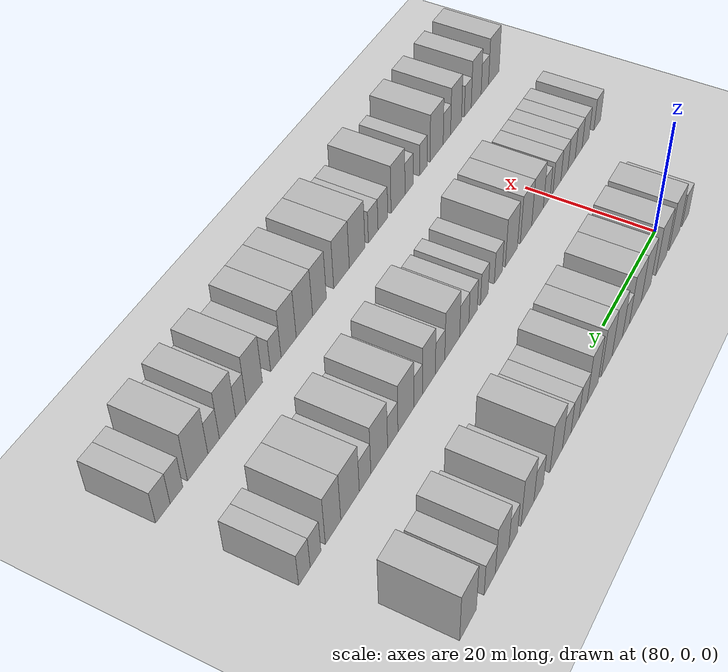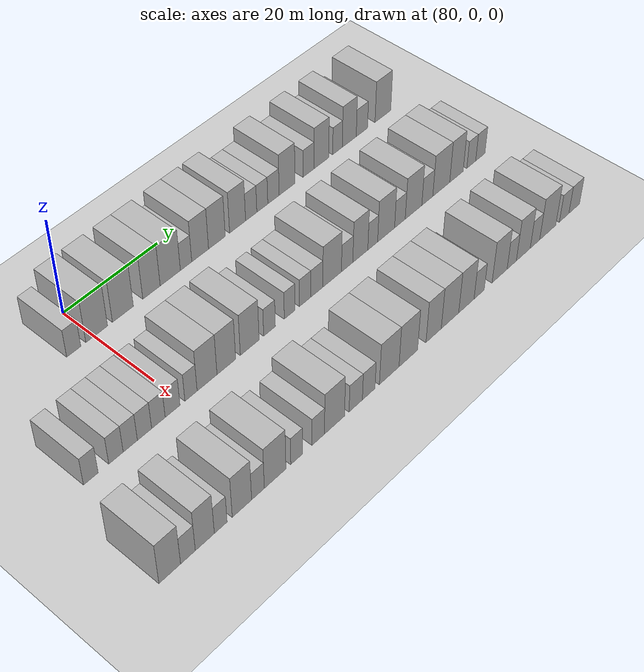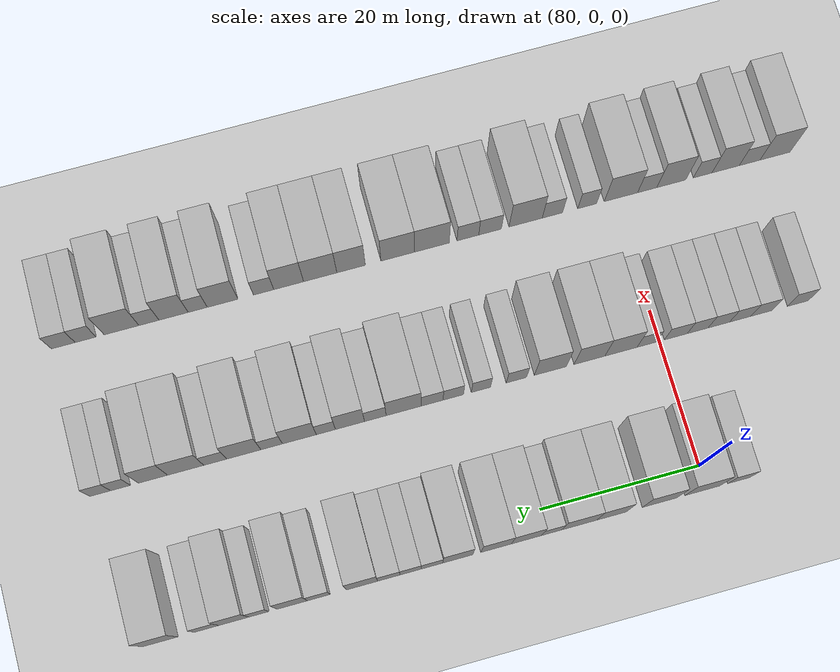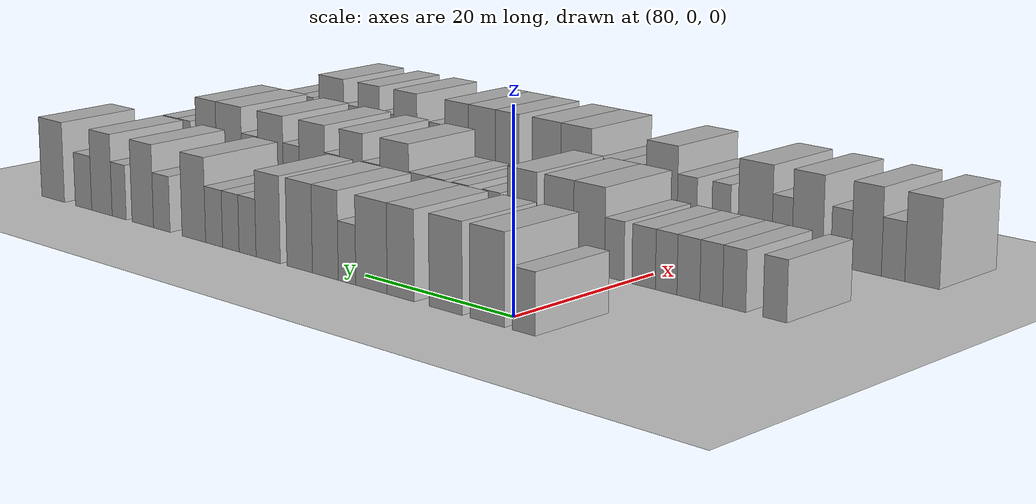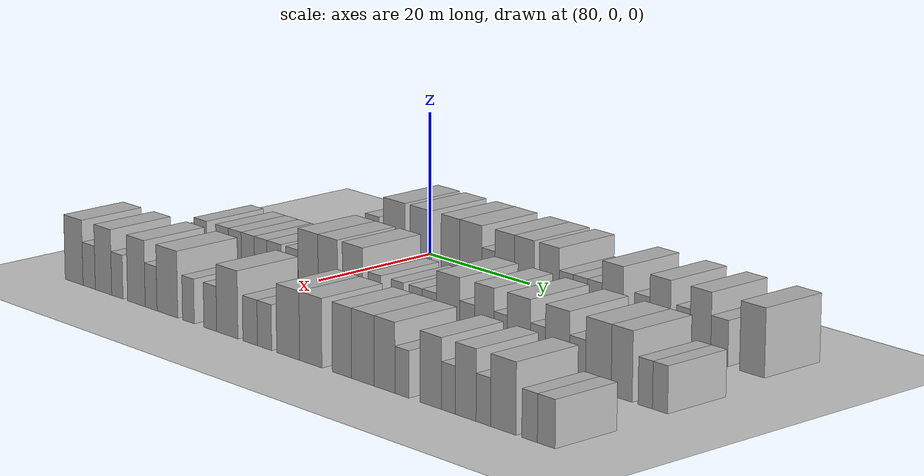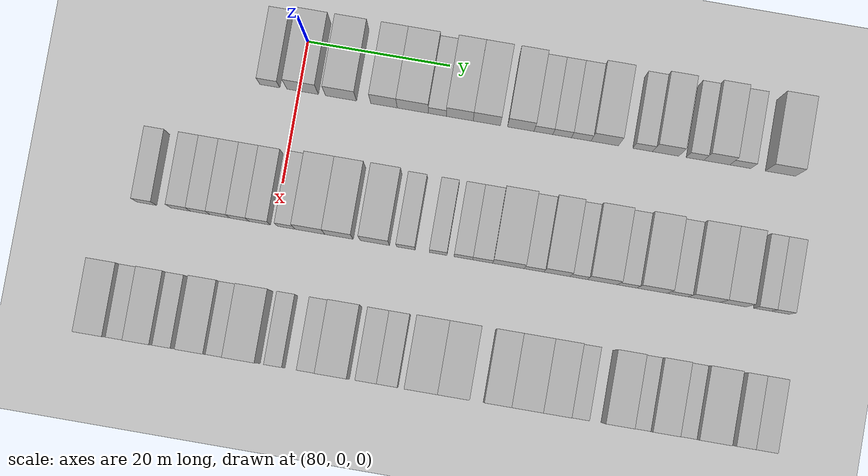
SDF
<sdf version="1.6">
 <world name="default">
  <include>
   <name>ground_plane_2</name>
   <uri>model://HANNAS_ground_plane</uri>
   <pose>100 0 0  0 0 0</pose>
  </include>
  <model name="building_600">
   <static>1</static>
   <pose>82.0000 -4.1194 0 0.000000 0.000000 0.000000</pose>
   <link name="link">
    <pose>0 0 3.00 0 0 0</pose>
    <collision name="collision"><geometry><box><size>10.0000 2.8161 6.0000</size></box></geometry></collision>
    <visual name="visual">
     <cast_shadows>0</cast_shadows>
     <geometry><box><size>10.0000 2.8161 6.0000</size></box></geometry>
     <material>
      <script>
       <uri>model://HANNAS_wall/materials/scripts</uri>
       <uri>model://HANNAS_wall/materials/textures</uri>
       <name>vrc/HANNAS_wall</name>
      </script>
     </material>
    </visual>
   </link>
  </model>
  <model name="building_601">
   <static>1</static>
   <pose>82.0000 0.5053 0 0.000000 0.000000 0.000000</pose>
   <link name="link">
    <pose>0 0 4.50 0 0 0</pose>
    <collision name="collision"><geometry><box><size>10.0000 4.4334 9.0000</size></box></geometry></collision>
    <visual name="visual">
     <cast_shadows>0</cast_shadows>
     <geometry><box><size>10.0000 4.4334 9.0000</size></box></geometry>
     <material>
      <script>
       <uri>model://HANNAS_wall/materials/scripts</uri>
       <uri>model://HANNAS_wall/materials/textures</uri>
       <name>vrc/HANNAS_wall</name>
      </script>
     </material>
    </visual>
   </link>
  </model>
  <model name="building_602">
   <static>1</static>
   <pose>82.0000 5.9042 0 0.000000 0.000000 0.000000</pose>
   <link name="link">
    <pose>0 0 4.50 0 0 0</pose>
    <collision name="collision"><geometry><box><size>10.0000 4.3644 9.0000</size></box></geometry></collision>
    <visual name="visual">
     <cast_shadows>0</cast_shadows>
     <geometry><box><size>10.0000 4.3644 9.0000</size></box></geometry>
     <material>
      <script>
       <uri>model://HANNAS_wall/materials/scripts</uri>
       <uri>model://HANNAS_wall/materials/textures</uri>
       <name>vrc/HANNAS_wall</name>
      </script>
     </material>
    </visual>
   </link>
  </model>
  <model name="building_603">
   <static>1</static>
   <pose>82.0000 11.9452 0 0.000000 0.000000 0.000000</pose>
   <link name="link">
    <pose>0 0 4.50 0 0 0</pose>
    <collision name="collision"><geometry><box><size>10.0000 3.7176 9.0000</size></box></geometry></collision>
    <visual name="visual">
     <cast_shadows>0</cast_shadows>
     <geometry><box><size>10.0000 3.7176 9.0000</size></box></geometry>
     <material>
      <script>
       <uri>model://HANNAS_wall/materials/scripts</uri>
       <uri>model://HANNAS_wall/materials/textures</uri>
       <name>vrc/HANNAS_wall</name>
      </script>
     </material>
    </visual>
   </link>
  </model>
  <model name="building_604">
   <static>1</static>
   <pose>82.0000 16.0056 0 0.000000 0.000000 0.000000</pose>
   <link name="link">
    <pose>0 0 4.50 0 0 0</pose>
    <collision name="collision"><geometry><box><size>10.0000 4.4032 9.0000</size></box></geometry></collision>
    <visual name="visual">
     <cast_shadows>0</cast_shadows>
     <geometry><box><size>10.0000 4.4032 9.0000</size></box></geometry>
     <material>
      <script>
       <uri>model://HANNAS_wall/materials/scripts</uri>
       <uri>model://HANNAS_wall/materials/textures</uri>
       <name>vrc/HANNAS_wall</name>
      </script>
     </material>
    </visual>
   </link>
  </model>
  <model name="building_605">
   <static>1</static>
   <pose>82.0000 19.4629 0 0.000000 0.000000 0.000000</pose>
   <link name="link">
    <pose>0 0 3.00 0 0 0</pose>
    <collision name="collision"><geometry><box><size>10.0000 2.5113 6.0000</size></box></geometry></collision>
    <visual name="visual">
     <cast_shadows>0</cast_shadows>
     <geometry><box><size>10.0000 2.5113 6.0000</size></box></geometry>
     <material>
      <script>
       <uri>model://HANNAS_wall/materials/scripts</uri>
       <uri>model://HANNAS_wall/materials/textures</uri>
       <name>vrc/HANNAS_wall</name>
      </script>
     </material>
    </visual>
   </link>
  </model>
  <model name="building_606">
   <static>1</static>
   <pose>82.0000 22.6037 0 0.000000 0.000000 0.000000</pose>
   <link name="link">
    <pose>0 0 4.50 0 0 0</pose>
    <collision name="collision"><geometry><box><size>10.0000 3.7704 9.0000</size></box></geometry></collision>
    <visual name="visual">
     <cast_shadows>0</cast_shadows>
     <geometry><box><size>10.0000 3.7704 9.0000</size></box></geometry>
     <material>
      <script>
       <uri>model://HANNAS_wall/materials/scripts</uri>
       <uri>model://HANNAS_wall/materials/textures</uri>
       <name>vrc/HANNAS_wall</name>
      </script>
     </material>
    </visual>
   </link>
  </model>
  <model name="building_607">
   <static>1</static>
   <pose>82.0000 26.3941 0 0.000000 0.000000 0.000000</pose>
   <link name="link">
    <pose>0 0 4.50 0 0 0</pose>
    <collision name="collision"><geometry><box><size>10.0000 3.8102 9.0000</size></box></geometry></collision>
    <visual name="visual">
     <cast_shadows>0</cast_shadows>
     <geometry><box><size>10.0000 3.8102 9.0000</size></box></geometry>
     <material>
      <script>
       <uri>model://HANNAS_wall/materials/scripts</uri>
       <uri>model://HANNAS_wall/materials/textures</uri>
       <name>vrc/HANNAS_wall</name>
      </script>
     </material>
    </visual>
   </link>
  </model>
  <model name="building_608">
   <static>1</static>
   <pose>82.0000 31.1596 0 0.000000 0.000000 0.000000</pose>
   <link name="link">
    <pose>0 0 4.50 0 0 0</pose>
    <collision name="collision"><geometry><box><size>10.0000 3.7208 9.0000</size></box></geometry></collision>
    <visual name="visual">
     <cast_shadows>0</cast_shadows>
     <geometry><box><size>10.0000 3.7208 9.0000</size></box></geometry>
     <material>
      <script>
       <uri>model://HANNAS_wall/materials/scripts</uri>
       <uri>model://HANNAS_wall/materials/textures</uri>
       <name>vrc/HANNAS_wall</name>
      </script>
     </material>
    </visual>
   </link>
  </model>
  <model name="building_609">
   <static>1</static>
   <pose>82.0000 34.3441 0 0.000000 0.000000 0.000000</pose>
   <link name="link">
    <pose>0 0 3.00 0 0 0</pose>
    <collision name="collision"><geometry><box><size>10.0000 2.6482 6.0000</size></box></geometry></collision>
    <visual name="visual">
     <cast_shadows>0</cast_shadows>
     <geometry><box><size>10.0000 2.6482 6.0000</size></box></geometry>
     <material>
      <script>
       <uri>model://HANNAS_wall/materials/scripts</uri>
       <uri>model://HANNAS_wall/materials/textures</uri>
       <name>vrc/HANNAS_wall</name>
      </script>
     </material>
    </visual>
   </link>
  </model>
  <model name="building_610">
   <static>1</static>
   <pose>82.0000 36.9778 0 0.000000 0.000000 0.000000</pose>
   <link name="link">
    <pose>0 0 3.00 0 0 0</pose>
    <collision name="collision"><geometry><box><size>10.0000 2.6191 6.0000</size></box></geometry></collision>
    <visual name="visual">
     <cast_shadows>0</cast_shadows>
     <geometry><box><size>10.0000 2.6191 6.0000</size></box></geometry>
     <material>
      <script>
       <uri>model://HANNAS_wall/materials/scripts</uri>
       <uri>model://HANNAS_wall/materials/textures</uri>
       <name>vrc/HANNAS_wall</name>
      </script>
     </material>
    </visual>
   </link>
  </model>
  <model name="building_611">
   <static>1</static>
   <pose>82.0000 39.6531 0 0.000000 0.000000 0.000000</pose>
   <link name="link">
    <pose>0 0 3.00 0 0 0</pose>
    <collision name="collision"><geometry><box><size>10.0000 2.7315 6.0000</size></box></geometry></collision>
    <visual name="visual">
     <cast_shadows>0</cast_shadows>
     <geometry><box><size>10.0000 2.7315 6.0000</size></box></geometry>
     <material>
      <script>
       <uri>model://HANNAS_wall/materials/scripts</uri>
       <uri>model://HANNAS_wall/materials/textures</uri>
       <name>vrc/HANNAS_wall</name>
      </script>
     </material>
    </visual>
   </link>
  </model>
  <model name="building_612">
   <static>1</static>
   <pose>82.0000 42.9489 0 0.000000 0.000000 0.000000</pose>
   <link name="link">
    <pose>0 0 4.50 0 0 0</pose>
    <collision name="collision"><geometry><box><size>10.0000 3.8601 9.0000</size></box></geometry></collision>
    <visual name="visual">
     <cast_shadows>0</cast_shadows>
     <geometry><box><size>10.0000 3.8601 9.0000</size></box></geometry>
     <material>
      <script>
       <uri>model://HANNAS_wall/materials/scripts</uri>
       <uri>model://HANNAS_wall/materials/textures</uri>
       <name>vrc/HANNAS_wall</name>
      </script>
     </material>
    </visual>
   </link>
  </model>
  <model name="building_613">
   <static>1</static>
   <pose>82.0000 48.2708 0 0.000000 0.000000 0.000000</pose>
   <link name="link">
    <pose>0 0 3.00 0 0 0</pose>
    <collision name="collision"><geometry><box><size>10.0000 2.7837 6.0000</size></box></geometry></collision>
    <visual name="visual">
     <cast_shadows>0</cast_shadows>
     <geometry><box><size>10.0000 2.7837 6.0000</size></box></geometry>
     <material>
      <script>
       <uri>model://HANNAS_wall/materials/scripts</uri>
       <uri>model://HANNAS_wall/materials/textures</uri>
       <name>vrc/HANNAS_wall</name>
      </script>
     </material>
    </visual>
   </link>
  </model>
  <model name="building_614">
   <static>1</static>
   <pose>82.0000 51.5148 0 0.000000 0.000000 0.000000</pose>
   <link name="link">
    <pose>0 0 4.50 0 0 0</pose>
    <collision name="collision"><geometry><box><size>10.0000 3.7043 9.0000</size></box></geometry></collision>
    <visual name="visual">
     <cast_shadows>0</cast_shadows>
     <geometry><box><size>10.0000 3.7043 9.0000</size></box></geometry>
     <material>
      <script>
       <uri>model://HANNAS_wall/materials/scripts</uri>
       <uri>model://HANNAS_wall/materials/textures</uri>
       <name>vrc/HANNAS_wall</name>
      </script>
     </material>
    </visual>
   </link>
  </model>
  <model name="building_615">
   <static>1</static>
   <pose>82.0000 55.6038 0 0.000000 0.000000 0.000000</pose>
   <link name="link">
    <pose>0 0 3.00 0 0 0</pose>
    <collision name="collision"><geometry><box><size>10.0000 2.4736 6.0000</size></box></geometry></collision>
    <visual name="visual">
     <cast_shadows>0</cast_shadows>
     <geometry><box><size>10.0000 2.4736 6.0000</size></box></geometry>
     <material>
      <script>
       <uri>model://HANNAS_wall/materials/scripts</uri>
       <uri>model://HANNAS_wall/materials/textures</uri>
       <name>vrc/HANNAS_wall</name>
      </script>
     </material>
    </visual>
   </link>
  </model>
  <model name="building_616">
   <static>1</static>
   <pose>82.0000 58.6643 0 0.000000 0.000000 0.000000</pose>
   <link name="link">
    <pose>0 0 4.50 0 0 0</pose>
    <collision name="collision"><geometry><box><size>10.0000 3.6474 9.0000</size></box></geometry></collision>
    <visual name="visual">
     <cast_shadows>0</cast_shadows>
     <geometry><box><size>10.0000 3.6474 9.0000</size></box></geometry>
     <material>
      <script>
       <uri>model://HANNAS_wall/materials/scripts</uri>
       <uri>model://HANNAS_wall/materials/textures</uri>
       <name>vrc/HANNAS_wall</name>
      </script>
     </material>
    </visual>
   </link>
  </model>
  <model name="building_617">
   <static>1</static>
   <pose>82.0000 61.9723 0 0.000000 0.000000 0.000000</pose>
   <link name="link">
    <pose>0 0 3.00 0 0 0</pose>
    <collision name="collision"><geometry><box><size>10.0000 2.9686 6.0000</size></box></geometry></collision>
    <visual name="visual">
     <cast_shadows>0</cast_shadows>
     <geometry><box><size>10.0000 2.9686 6.0000</size></box></geometry>
     <material>
      <script>
       <uri>model://HANNAS_wall/materials/scripts</uri>
       <uri>model://HANNAS_wall/materials/textures</uri>
       <name>vrc/HANNAS_wall</name>
      </script>
     </material>
    </visual>
   </link>
  </model>
  <model name="building_618">
   <static>1</static>
   <pose>82.0000 67.5779 0 0.000000 0.000000 0.000000</pose>
   <link name="link">
    <pose>0 0 4.50 0 0 0</pose>
    <collision name="collision"><geometry><box><size>10.0000 4.2428 9.0000</size></box></geometry></collision>
    <visual name="visual">
     <cast_shadows>0</cast_shadows>
     <geometry><box><size>10.0000 4.2428 9.0000</size></box></geometry>
     <material>
      <script>
       <uri>model://HANNAS_wall/materials/scripts</uri>
       <uri>model://HANNAS_wall/materials/textures</uri>
       <name>vrc/HANNAS_wall</name>
      </script>
     </material>
    </visual>
   </link>
  </model>
  <model name="building_772">
   <static>1</static>
   <pose>101.0000 -17.9680 0 0.000000 0.000000 0.000000</pose>
   <link name="link">
    <pose>0 0 3.00 0 0 0</pose>
    <collision name="collision"><geometry><box><size>10.0000 2.7408 6.0000</size></box></geometry></collision>
    <visual name="visual">
     <cast_shadows>0</cast_shadows>
     <geometry><box><size>10.0000 2.7408 6.0000</size></box></geometry>
     <material>
      <script>
       <uri>model://HANNAS_wall/materials/scripts</uri>
       <uri>model://HANNAS_wall/materials/textures</uri>
       <name>vrc/HANNAS_wall</name>
      </script>
     </material>
    </visual>
   </link>
  </model>
  <model name="building_773">
   <static>1</static>
   <pose>101.0000 -13.2182 0 0.000000 0.000000 0.000000</pose>
   <link name="link">
    <pose>0 0 3.00 0 0 0</pose>
    <collision name="collision"><geometry><box><size>10.0000 2.7588 6.0000</size></box></geometry></collision>
    <visual name="visual">
     <cast_shadows>0</cast_shadows>
     <geometry><box><size>10.0000 2.7588 6.0000</size></box></geometry>
     <material>
      <script>
       <uri>model://HANNAS_wall/materials/scripts</uri>
       <uri>model://HANNAS_wall/materials/textures</uri>
       <name>vrc/HANNAS_wall</name>
      </script>
     </material>
    </visual>
   </link>
  </model>
  <model name="building_774">
   <static>1</static>
   <pose>101.0000 -10.4670 0 0.000000 0.000000 0.000000</pose>
   <link name="link">
    <pose>0 0 3.00 0 0 0</pose>
    <collision name="collision"><geometry><box><size>10.0000 2.7435 6.0000</size></box></geometry></collision>
    <visual name="visual">
     <cast_shadows>0</cast_shadows>
     <geometry><box><size>10.0000 2.7435 6.0000</size></box></geometry>
     <material>
      <script>
       <uri>model://HANNAS_wall/materials/scripts</uri>
       <uri>model://HANNAS_wall/materials/textures</uri>
       <name>vrc/HANNAS_wall</name>
      </script>
     </material>
    </visual>
   </link>
  </model>
  <model name="building_775">
   <static>1</static>
   <pose>101.0000 -7.6964 0 0.000000 0.000000 0.000000</pose>
   <link name="link">
    <pose>0 0 3.00 0 0 0</pose>
    <collision name="collision"><geometry><box><size>10.0000 2.7978 6.0000</size></box></geometry></collision>
    <visual name="visual">
     <cast_shadows>0</cast_shadows>
     <geometry><box><size>10.0000 2.7978 6.0000</size></box></geometry>
     <material>
      <script>
       <uri>model://HANNAS_wall/materials/scripts</uri>
       <uri>model://HANNAS_wall/materials/textures</uri>
       <name>vrc/HANNAS_wall</name>
      </script>
     </material>
    </visual>
   </link>
  </model>
  <model name="building_776">
   <static>1</static>
   <pose>101.0000 -4.9535 0 0.000000 0.000000 0.000000</pose>
   <link name="link">
    <pose>0 0 3.00 0 0 0</pose>
    <collision name="collision"><geometry><box><size>10.0000 2.6879 6.0000</size></box></geometry></collision>
    <visual name="visual">
     <cast_shadows>0</cast_shadows>
     <geometry><box><size>10.0000 2.6879 6.0000</size></box></geometry>
     <material>
      <script>
       <uri>model://HANNAS_wall/materials/scripts</uri>
       <uri>model://HANNAS_wall/materials/textures</uri>
       <name>vrc/HANNAS_wall</name>
      </script>
     </material>
    </visual>
   </link>
  </model>
  <model name="building_777">
   <static>1</static>
   <pose>101.0000 -2.1187 0 0.000000 0.000000 0.000000</pose>
   <link name="link">
    <pose>0 0 3.00 0 0 0</pose>
    <collision name="collision"><geometry><box><size>10.0000 2.9818 6.0000</size></box></geometry></collision>
    <visual name="visual">
     <cast_shadows>0</cast_shadows>
     <geometry><box><size>10.0000 2.9818 6.0000</size></box></geometry>
     <material>
      <script>
       <uri>model://HANNAS_wall/materials/scripts</uri>
       <uri>model://HANNAS_wall/materials/textures</uri>
       <name>vrc/HANNAS_wall</name>
      </script>
     </material>
    </visual>
   </link>
  </model>
  <model name="building_778">
   <static>1</static>
   <pose>101.0000 1.6247 0 0.000000 0.000000 0.000000</pose>
   <link name="link">
    <pose>0 0 3.00 0 0 0</pose>
    <collision name="collision"><geometry><box><size>10.0000 2.5049 6.0000</size></box></geometry></collision>
    <visual name="visual">
     <cast_shadows>0</cast_shadows>
     <geometry><box><size>10.0000 2.5049 6.0000</size></box></geometry>
     <material>
      <script>
       <uri>model://HANNAS_wall/materials/scripts</uri>
       <uri>model://HANNAS_wall/materials/textures</uri>
       <name>vrc/HANNAS_wall</name>
      </script>
     </material>
    </visual>
   </link>
  </model>
  <model name="building_779">
   <static>1</static>
   <pose>101.0000 4.9451 0 0.000000 0.000000 0.000000</pose>
   <link name="link">
    <pose>0 0 4.50 0 0 0</pose>
    <collision name="collision"><geometry><box><size>10.0000 4.1361 9.0000</size></box></geometry></collision>
    <visual name="visual">
     <cast_shadows>0</cast_shadows>
     <geometry><box><size>10.0000 4.1361 9.0000</size></box></geometry>
     <material>
      <script>
       <uri>model://HANNAS_wall/materials/scripts</uri>
       <uri>model://HANNAS_wall/materials/textures</uri>
       <name>vrc/HANNAS_wall</name>
      </script>
     </material>
    </visual>
   </link>
  </model>
  <model name="building_780">
   <static>1</static>
   <pose>101.0000 8.9922 0 0.000000 0.000000 0.000000</pose>
   <link name="link">
    <pose>0 0 4.50 0 0 0</pose>
    <collision name="collision"><geometry><box><size>10.0000 3.9580 9.0000</size></box></geometry></collision>
    <visual name="visual">
     <cast_shadows>0</cast_shadows>
     <geometry><box><size>10.0000 3.9580 9.0000</size></box></geometry>
     <material>
      <script>
       <uri>model://HANNAS_wall/materials/scripts</uri>
       <uri>model://HANNAS_wall/materials/textures</uri>
       <name>vrc/HANNAS_wall</name>
      </script>
     </material>
    </visual>
   </link>
  </model>
  <model name="building_781">
   <static>1</static>
   <pose>101.0000 14.0090 0 0.000000 0.000000 0.000000</pose>
   <link name="link">
    <pose>0 0 4.50 0 0 0</pose>
    <collision name="collision"><geometry><box><size>10.0000 4.0757 9.0000</size></box></geometry></collision>
    <visual name="visual">
     <cast_shadows>0</cast_shadows>
     <geometry><box><size>10.0000 4.0757 9.0000</size></box></geometry>
     <material>
      <script>
       <uri>model://HANNAS_wall/materials/scripts</uri>
       <uri>model://HANNAS_wall/materials/textures</uri>
       <name>vrc/HANNAS_wall</name>
      </script>
     </material>
    </visual>
   </link>
  </model>
  <model name="building_782">
   <static>1</static>
   <pose>101.0000 18.3426 0 0.000000 0.000000 0.000000</pose>
   <link name="link">
    <pose>0 0 3.00 0 0 0</pose>
    <collision name="collision"><geometry><box><size>10.0000 2.5915 6.0000</size></box></geometry></collision>
    <visual name="visual">
     <cast_shadows>0</cast_shadows>
     <geometry><box><size>10.0000 2.5915 6.0000</size></box></geometry>
     <material>
      <script>
       <uri>model://HANNAS_wall/materials/scripts</uri>
       <uri>model://HANNAS_wall/materials/textures</uri>
       <name>vrc/HANNAS_wall</name>
      </script>
     </material>
    </visual>
   </link>
  </model>
  <model name="building_783">
   <static>1</static>
   <pose>101.0000 22.8567 0 0.000000 0.000000 0.000000</pose>
   <link name="link">
    <pose>0 0 3.00 0 0 0</pose>
    <collision name="collision"><geometry><box><size>10.0000 2.4367 6.0000</size></box></geometry></collision>
    <visual name="visual">
     <cast_shadows>0</cast_shadows>
     <geometry><box><size>10.0000 2.4367 6.0000</size></box></geometry>
     <material>
      <script>
       <uri>model://HANNAS_wall/materials/scripts</uri>
       <uri>model://HANNAS_wall/materials/textures</uri>
       <name>vrc/HANNAS_wall</name>
      </script>
     </material>
    </visual>
   </link>
  </model>
  <model name="building_784">
   <static>1</static>
   <pose>101.0000 26.3698 0 0.000000 0.000000 0.000000</pose>
   <link name="link">
    <pose>0 0 3.00 0 0 0</pose>
    <collision name="collision"><geometry><box><size>10.0000 2.5895 6.0000</size></box></geometry></collision>
    <visual name="visual">
     <cast_shadows>0</cast_shadows>
     <geometry><box><size>10.0000 2.5895 6.0000</size></box></geometry>
     <material>
      <script>
       <uri>model://HANNAS_wall/materials/scripts</uri>
       <uri>model://HANNAS_wall/materials/textures</uri>
       <name>vrc/HANNAS_wall</name>
      </script>
     </material>
    </visual>
   </link>
  </model>
  <model name="building_785">
   <static>1</static>
   <pose>101.0000 29.0653 0 0.000000 0.000000 0.000000</pose>
   <link name="link">
    <pose>0 0 3.00 0 0 0</pose>
    <collision name="collision"><geometry><box><size>10.0000 2.8015 6.0000</size></box></geometry></collision>
    <visual name="visual">
     <cast_shadows>0</cast_shadows>
     <geometry><box><size>10.0000 2.8015 6.0000</size></box></geometry>
     <material>
      <script>
       <uri>model://HANNAS_wall/materials/scripts</uri>
       <uri>model://HANNAS_wall/materials/textures</uri>
       <name>vrc/HANNAS_wall</name>
      </script>
     </material>
    </visual>
   </link>
  </model>
  <model name="building_786">
   <static>1</static>
   <pose>101.0000 32.6621 0 0.000000 0.000000 0.000000</pose>
   <link name="link">
    <pose>0 0 4.50 0 0 0</pose>
    <collision name="collision"><geometry><box><size>10.0000 4.3921 9.0000</size></box></geometry></collision>
    <visual name="visual">
     <cast_shadows>0</cast_shadows>
     <geometry><box><size>10.0000 4.3921 9.0000</size></box></geometry>
     <material>
      <script>
       <uri>model://HANNAS_wall/materials/scripts</uri>
       <uri>model://HANNAS_wall/materials/textures</uri>
       <name>vrc/HANNAS_wall</name>
      </script>
     </material>
    </visual>
   </link>
  </model>
  <model name="building_787">
   <static>1</static>
   <pose>101.0000 36.2251 0 0.000000 0.000000 0.000000</pose>
   <link name="link">
    <pose>0 0 3.00 0 0 0</pose>
    <collision name="collision"><geometry><box><size>10.0000 2.7339 6.0000</size></box></geometry></collision>
    <visual name="visual">
     <cast_shadows>0</cast_shadows>
     <geometry><box><size>10.0000 2.7339 6.0000</size></box></geometry>
     <material>
      <script>
       <uri>model://HANNAS_wall/materials/scripts</uri>
       <uri>model://HANNAS_wall/materials/textures</uri>
       <name>vrc/HANNAS_wall</name>
      </script>
     </material>
    </visual>
   </link>
  </model>
  <model name="building_788">
   <static>1</static>
   <pose>101.0000 39.4159 0 0.000000 0.000000 0.000000</pose>
   <link name="link">
    <pose>0 0 4.50 0 0 0</pose>
    <collision name="collision"><geometry><box><size>10.0000 3.6477 9.0000</size></box></geometry></collision>
    <visual name="visual">
     <cast_shadows>0</cast_shadows>
     <geometry><box><size>10.0000 3.6477 9.0000</size></box></geometry>
     <material>
      <script>
       <uri>model://HANNAS_wall/materials/scripts</uri>
       <uri>model://HANNAS_wall/materials/textures</uri>
       <name>vrc/HANNAS_wall</name>
      </script>
     </material>
    </visual>
   </link>
  </model>
  <model name="building_789">
   <static>1</static>
   <pose>101.0000 42.4457 0 0.000000 0.000000 0.000000</pose>
   <link name="link">
    <pose>0 0 3.00 0 0 0</pose>
    <collision name="collision"><geometry><box><size>10.0000 2.4117 6.0000</size></box></geometry></collision>
    <visual name="visual">
     <cast_shadows>0</cast_shadows>
     <geometry><box><size>10.0000 2.4117 6.0000</size></box></geometry>
     <material>
      <script>
       <uri>model://HANNAS_wall/materials/scripts</uri>
       <uri>model://HANNAS_wall/materials/textures</uri>
       <name>vrc/HANNAS_wall</name>
      </script>
     </material>
    </visual>
   </link>
  </model>
  <model name="building_790">
   <static>1</static>
   <pose>101.0000 45.7668 0 0.000000 0.000000 0.000000</pose>
   <link name="link">
    <pose>0 0 4.50 0 0 0</pose>
    <collision name="collision"><geometry><box><size>10.0000 4.2306 9.0000</size></box></geometry></collision>
    <visual name="visual">
     <cast_shadows>0</cast_shadows>
     <geometry><box><size>10.0000 4.2306 9.0000</size></box></geometry>
     <material>
      <script>
       <uri>model://HANNAS_wall/materials/scripts</uri>
       <uri>model://HANNAS_wall/materials/textures</uri>
       <name>vrc/HANNAS_wall</name>
      </script>
     </material>
    </visual>
   </link>
  </model>
  <model name="building_791">
   <static>1</static>
   <pose>101.0000 49.2324 0 0.000000 0.000000 0.000000</pose>
   <link name="link">
    <pose>0 0 3.00 0 0 0</pose>
    <collision name="collision"><geometry><box><size>10.0000 2.7007 6.0000</size></box></geometry></collision>
    <visual name="visual">
     <cast_shadows>0</cast_shadows>
     <geometry><box><size>10.0000 2.7007 6.0000</size></box></geometry>
     <material>
      <script>
       <uri>model://HANNAS_wall/materials/scripts</uri>
       <uri>model://HANNAS_wall/materials/textures</uri>
       <name>vrc/HANNAS_wall</name>
      </script>
     </material>
    </visual>
   </link>
  </model>
  <model name="building_792">
   <static>1</static>
   <pose>101.0000 52.7165 0 0.000000 0.000000 0.000000</pose>
   <link name="link">
    <pose>0 0 4.50 0 0 0</pose>
    <collision name="collision"><geometry><box><size>10.0000 4.2675 9.0000</size></box></geometry></collision>
    <visual name="visual">
     <cast_shadows>0</cast_shadows>
     <geometry><box><size>10.0000 4.2675 9.0000</size></box></geometry>
     <material>
      <script>
       <uri>model://HANNAS_wall/materials/scripts</uri>
       <uri>model://HANNAS_wall/materials/textures</uri>
       <name>vrc/HANNAS_wall</name>
      </script>
     </material>
    </visual>
   </link>
  </model>
  <model name="building_793">
   <static>1</static>
   <pose>101.0000 56.2872 0 0.000000 0.000000 0.000000</pose>
   <link name="link">
    <pose>0 0 3.00 0 0 0</pose>
    <collision name="collision"><geometry><box><size>10.0000 2.8739 6.0000</size></box></geometry></collision>
    <visual name="visual">
     <cast_shadows>0</cast_shadows>
     <geometry><box><size>10.0000 2.8739 6.0000</size></box></geometry>
     <material>
      <script>
       <uri>model://HANNAS_wall/materials/scripts</uri>
       <uri>model://HANNAS_wall/materials/textures</uri>
       <name>vrc/HANNAS_wall</name>
      </script>
     </material>
    </visual>
   </link>
  </model>
  <model name="building_794">
   <static>1</static>
   <pose>101.0000 59.9628 0 0.000000 0.000000 0.000000</pose>
   <link name="link">
    <pose>0 0 4.50 0 0 0</pose>
    <collision name="collision"><geometry><box><size>10.0000 4.4774 9.0000</size></box></geometry></collision>
    <visual name="visual">
     <cast_shadows>0</cast_shadows>
     <geometry><box><size>10.0000 4.4774 9.0000</size></box></geometry>
     <material>
      <script>
       <uri>model://HANNAS_wall/materials/scripts</uri>
       <uri>model://HANNAS_wall/materials/textures</uri>
       <name>vrc/HANNAS_wall</name>
      </script>
     </material>
    </visual>
   </link>
  </model>
  <model name="building_795">
   <static>1</static>
   <pose>101.0000 64.0143 0 0.000000 0.000000 0.000000</pose>
   <link name="link">
    <pose>0 0 4.50 0 0 0</pose>
    <collision name="collision"><geometry><box><size>10.0000 3.6256 9.0000</size></box></geometry></collision>
    <visual name="visual">
     <cast_shadows>0</cast_shadows>
     <geometry><box><size>10.0000 3.6256 9.0000</size></box></geometry>
     <material>
      <script>
       <uri>model://HANNAS_wall/materials/scripts</uri>
       <uri>model://HANNAS_wall/materials/textures</uri>
       <name>vrc/HANNAS_wall</name>
      </script>
     </material>
    </visual>
   </link>
  </model>
  <model name="building_796">
   <static>1</static>
   <pose>101.0000 68.0453 0 0.000000 0.000000 0.000000</pose>
   <link name="link">
    <pose>0 0 3.00 0 0 0</pose>
    <collision name="collision"><geometry><box><size>10.0000 2.4365 6.0000</size></box></geometry></collision>
    <visual name="visual">
     <cast_shadows>0</cast_shadows>
     <geometry><box><size>10.0000 2.4365 6.0000</size></box></geometry>
     <material>
      <script>
       <uri>model://HANNAS_wall/materials/scripts</uri>
       <uri>model://HANNAS_wall/materials/textures</uri>
       <name>vrc/HANNAS_wall</name>
      </script>
     </material>
    </visual>
   </link>
  </model>
  <model name="building_797">
   <static>1</static>
   <pose>101.0000 70.5417 0 0.000000 0.000000 0.000000</pose>
   <link name="link">
    <pose>0 0 3.00 0 0 0</pose>
    <collision name="collision"><geometry><box><size>10.0000 2.5562 6.0000</size></box></geometry></collision>
    <visual name="visual">
     <cast_shadows>0</cast_shadows>
     <geometry><box><size>10.0000 2.5562 6.0000</size></box></geometry>
     <material>
      <script>
       <uri>model://HANNAS_wall/materials/scripts</uri>
       <uri>model://HANNAS_wall/materials/textures</uri>
       <name>vrc/HANNAS_wall</name>
      </script>
     </material>
    </visual>
   </link>
  </model>
  <model name="building_945">
   <static>1</static>
   <pose>120.0000 -21.2615 0 0.000000 0.000000 0.000000</pose>
   <link name="link">
    <pose>0 0 4.50 0 0 0</pose>
    <collision name="collision"><geometry><box><size>10.0000 3.9954 9.0000</size></box></geometry></collision>
    <visual name="visual">
     <cast_shadows>0</cast_shadows>
     <geometry><box><size>10.0000 3.9954 9.0000</size></box></geometry>
     <material>
      <script>
       <uri>model://HANNAS_wall/materials/scripts</uri>
       <uri>model://HANNAS_wall/materials/textures</uri>
       <name>vrc/HANNAS_wall</name>
      </script>
     </material>
    </visual>
   </link>
  </model>
  <model name="building_946">
   <static>1</static>
   <pose>120.0000 -17.8879 0 0.000000 0.000000 0.000000</pose>
   <link name="link">
    <pose>0 0 3.00 0 0 0</pose>
    <collision name="collision"><geometry><box><size>10.0000 2.7517 6.0000</size></box></geometry></collision>
    <visual name="visual">
     <cast_shadows>0</cast_shadows>
     <geometry><box><size>10.0000 2.7517 6.0000</size></box></geometry>
     <material>
      <script>
       <uri>model://HANNAS_wall/materials/scripts</uri>
       <uri>model://HANNAS_wall/materials/textures</uri>
       <name>vrc/HANNAS_wall</name>
      </script>
     </material>
    </visual>
   </link>
  </model>
  <model name="building_947">
   <static>1</static>
   <pose>120.0000 -14.7042 0 0.000000 0.000000 0.000000</pose>
   <link name="link">
    <pose>0 0 4.50 0 0 0</pose>
    <collision name="collision"><geometry><box><size>10.0000 3.6158 9.0000</size></box></geometry></collision>
    <visual name="visual">
     <cast_shadows>0</cast_shadows>
     <geometry><box><size>10.0000 3.6158 9.0000</size></box></geometry>
     <material>
      <script>
       <uri>model://HANNAS_wall/materials/scripts</uri>
       <uri>model://HANNAS_wall/materials/textures</uri>
       <name>vrc/HANNAS_wall</name>
      </script>
     </material>
    </visual>
   </link>
  </model>
  <model name="building_948">
   <static>1</static>
   <pose>120.0000 -11.6616 0 0.000000 0.000000 0.000000</pose>
   <link name="link">
    <pose>0 0 3.00 0 0 0</pose>
    <collision name="collision"><geometry><box><size>10.0000 2.4694 6.0000</size></box></geometry></collision>
    <visual name="visual">
     <cast_shadows>0</cast_shadows>
     <geometry><box><size>10.0000 2.4694 6.0000</size></box></geometry>
     <material>
      <script>
       <uri>model://HANNAS_wall/materials/scripts</uri>
       <uri>model://HANNAS_wall/materials/textures</uri>
       <name>vrc/HANNAS_wall</name>
      </script>
     </material>
    </visual>
   </link>
  </model>
  <model name="building_949">
   <static>1</static>
   <pose>120.0000 -7.5165 0 0.000000 0.000000 0.000000</pose>
   <link name="link">
    <pose>0 0 4.50 0 0 0</pose>
    <collision name="collision"><geometry><box><size>10.0000 3.8207 9.0000</size></box></geometry></collision>
    <visual name="visual">
     <cast_shadows>0</cast_shadows>
     <geometry><box><size>10.0000 3.8207 9.0000</size></box></geometry>
     <material>
      <script>
       <uri>model://HANNAS_wall/materials/scripts</uri>
       <uri>model://HANNAS_wall/materials/textures</uri>
       <name>vrc/HANNAS_wall</name>
      </script>
     </material>
    </visual>
   </link>
  </model>
  <model name="building_950">
   <static>1</static>
   <pose>120.0000 -4.3353 0 0.000000 0.000000 0.000000</pose>
   <link name="link">
    <pose>0 0 3.00 0 0 0</pose>
    <collision name="collision"><geometry><box><size>10.0000 2.5418 6.0000</size></box></geometry></collision>
    <visual name="visual">
     <cast_shadows>0</cast_shadows>
     <geometry><box><size>10.0000 2.5418 6.0000</size></box></geometry>
     <material>
      <script>
       <uri>model://HANNAS_wall/materials/scripts</uri>
       <uri>model://HANNAS_wall/materials/textures</uri>
       <name>vrc/HANNAS_wall</name>
      </script>
     </material>
    </visual>
   </link>
  </model>
  <model name="building_951">
   <static>1</static>
   <pose>120.0000 -0.8665 0 0.000000 0.000000 0.000000</pose>
   <link name="link">
    <pose>0 0 4.50 0 0 0</pose>
    <collision name="collision"><geometry><box><size>10.0000 4.3957 9.0000</size></box></geometry></collision>
    <visual name="visual">
     <cast_shadows>0</cast_shadows>
     <geometry><box><size>10.0000 4.3957 9.0000</size></box></geometry>
     <material>
      <script>
       <uri>model://HANNAS_wall/materials/scripts</uri>
       <uri>model://HANNAS_wall/materials/textures</uri>
       <name>vrc/HANNAS_wall</name>
      </script>
     </material>
    </visual>
   </link>
  </model>
  <model name="building_952">
   <static>1</static>
   <pose>120.0000 3.5625 0 0.000000 0.000000 0.000000</pose>
   <link name="link">
    <pose>0 0 3.00 0 0 0</pose>
    <collision name="collision"><geometry><box><size>10.0000 2.4623 6.0000</size></box></geometry></collision>
    <visual name="visual">
     <cast_shadows>0</cast_shadows>
     <geometry><box><size>10.0000 2.4623 6.0000</size></box></geometry>
     <material>
      <script>
       <uri>model://HANNAS_wall/materials/scripts</uri>
       <uri>model://HANNAS_wall/materials/textures</uri>
       <name>vrc/HANNAS_wall</name>
      </script>
     </material>
    </visual>
   </link>
  </model>
  <model name="building_953">
   <static>1</static>
   <pose>120.0000 8.1155 0 0.000000 0.000000 0.000000</pose>
   <link name="link">
    <pose>0 0 3.00 0 0 0</pose>
    <collision name="collision"><geometry><box><size>10.0000 2.6438 6.0000</size></box></geometry></collision>
    <visual name="visual">
     <cast_shadows>0</cast_shadows>
     <geometry><box><size>10.0000 2.6438 6.0000</size></box></geometry>
     <material>
      <script>
       <uri>model://HANNAS_wall/materials/scripts</uri>
       <uri>model://HANNAS_wall/materials/textures</uri>
       <name>vrc/HANNAS_wall</name>
      </script>
     </material>
    </visual>
   </link>
  </model>
  <model name="building_954">
   <static>1</static>
   <pose>120.0000 11.6049 0 0.000000 0.000000 0.000000</pose>
   <link name="link">
    <pose>0 0 4.50 0 0 0</pose>
    <collision name="collision"><geometry><box><size>10.0000 4.3350 9.0000</size></box></geometry></collision>
    <visual name="visual">
     <cast_shadows>0</cast_shadows>
     <geometry><box><size>10.0000 4.3350 9.0000</size></box></geometry>
     <material>
      <script>
       <uri>model://HANNAS_wall/materials/scripts</uri>
       <uri>model://HANNAS_wall/materials/textures</uri>
       <name>vrc/HANNAS_wall</name>
      </script>
     </material>
    </visual>
   </link>
  </model>
  <model name="building_955">
   <static>1</static>
   <pose>120.0000 16.2438 0 0.000000 0.000000 0.000000</pose>
   <link name="link">
    <pose>0 0 3.00 0 0 0</pose>
    <collision name="collision"><geometry><box><size>10.0000 2.9429 6.0000</size></box></geometry></collision>
    <visual name="visual">
     <cast_shadows>0</cast_shadows>
     <geometry><box><size>10.0000 2.9429 6.0000</size></box></geometry>
     <material>
      <script>
       <uri>model://HANNAS_wall/materials/scripts</uri>
       <uri>model://HANNAS_wall/materials/textures</uri>
       <name>vrc/HANNAS_wall</name>
      </script>
     </material>
    </visual>
   </link>
  </model>
  <model name="building_956">
   <static>1</static>
   <pose>120.0000 19.1315 0 0.000000 0.000000 0.000000</pose>
   <link name="link">
    <pose>0 0 3.00 0 0 0</pose>
    <collision name="collision"><geometry><box><size>10.0000 2.8325 6.0000</size></box></geometry></collision>
    <visual name="visual">
     <cast_shadows>0</cast_shadows>
     <geometry><box><size>10.0000 2.8325 6.0000</size></box></geometry>
     <material>
      <script>
       <uri>model://HANNAS_wall/materials/scripts</uri>
       <uri>model://HANNAS_wall/materials/textures</uri>
       <name>vrc/HANNAS_wall</name>
      </script>
     </material>
    </visual>
   </link>
  </model>
  <model name="building_957">
   <static>1</static>
   <pose>120.0000 23.7978 0 0.000000 0.000000 0.000000</pose>
   <link name="link">
    <pose>0 0 4.50 0 0 0</pose>
    <collision name="collision"><geometry><box><size>10.0000 4.5000 9.0000</size></box></geometry></collision>
    <visual name="visual">
     <cast_shadows>0</cast_shadows>
     <geometry><box><size>10.0000 4.5000 9.0000</size></box></geometry>
     <material>
      <script>
       <uri>model://HANNAS_wall/materials/scripts</uri>
       <uri>model://HANNAS_wall/materials/textures</uri>
       <name>vrc/HANNAS_wall</name>
      </script>
     </material>
    </visual>
   </link>
  </model>
  <model name="building_958">
   <static>1</static>
   <pose>120.0000 28.2172 0 0.000000 0.000000 0.000000</pose>
   <link name="link">
    <pose>0 0 4.50 0 0 0</pose>
    <collision name="collision"><geometry><box><size>10.0000 4.3388 9.0000</size></box></geometry></collision>
    <visual name="visual">
     <cast_shadows>0</cast_shadows>
     <geometry><box><size>10.0000 4.3388 9.0000</size></box></geometry>
     <material>
      <script>
       <uri>model://HANNAS_wall/materials/scripts</uri>
       <uri>model://HANNAS_wall/materials/textures</uri>
       <name>vrc/HANNAS_wall</name>
      </script>
     </material>
    </visual>
   </link>
  </model>
  <model name="building_959">
   <static>1</static>
   <pose>120.0000 34.2250 0 0.000000 0.000000 0.000000</pose>
   <link name="link">
    <pose>0 0 4.50 0 0 0</pose>
    <collision name="collision"><geometry><box><size>10.0000 3.6769 9.0000</size></box></geometry></collision>
    <visual name="visual">
     <cast_shadows>0</cast_shadows>
     <geometry><box><size>10.0000 3.6769 9.0000</size></box></geometry>
     <material>
      <script>
       <uri>model://HANNAS_wall/materials/scripts</uri>
       <uri>model://HANNAS_wall/materials/textures</uri>
       <name>vrc/HANNAS_wall</name>
      </script>
     </material>
    </visual>
   </link>
  </model>
  <model name="building_960">
   <static>1</static>
   <pose>120.0000 38.1972 0 0.000000 0.000000 0.000000</pose>
   <link name="link">
    <pose>0 0 4.50 0 0 0</pose>
    <collision name="collision"><geometry><box><size>10.0000 4.2674 9.0000</size></box></geometry></collision>
    <visual name="visual">
     <cast_shadows>0</cast_shadows>
     <geometry><box><size>10.0000 4.2674 9.0000</size></box></geometry>
     <material>
      <script>
       <uri>model://HANNAS_wall/materials/scripts</uri>
       <uri>model://HANNAS_wall/materials/textures</uri>
       <name>vrc/HANNAS_wall</name>
      </script>
     </material>
    </visual>
   </link>
  </model>
  <model name="building_961">
   <static>1</static>
   <pose>120.0000 42.2434 0 0.000000 0.000000 0.000000</pose>
   <link name="link">
    <pose>0 0 4.50 0 0 0</pose>
    <collision name="collision"><geometry><box><size>10.0000 3.8251 9.0000</size></box></geometry></collision>
    <visual name="visual">
     <cast_shadows>0</cast_shadows>
     <geometry><box><size>10.0000 3.8251 9.0000</size></box></geometry>
     <material>
      <script>
       <uri>model://HANNAS_wall/materials/scripts</uri>
       <uri>model://HANNAS_wall/materials/textures</uri>
       <name>vrc/HANNAS_wall</name>
      </script>
     </material>
    </visual>
   </link>
  </model>
  <model name="building_962">
   <static>1</static>
   <pose>120.0000 45.4483 0 0.000000 0.000000 0.000000</pose>
   <link name="link">
    <pose>0 0 3.00 0 0 0</pose>
    <collision name="collision"><geometry><box><size>10.0000 2.5847 6.0000</size></box></geometry></collision>
    <visual name="visual">
     <cast_shadows>0</cast_shadows>
     <geometry><box><size>10.0000 2.5847 6.0000</size></box></geometry>
     <material>
      <script>
       <uri>model://HANNAS_wall/materials/scripts</uri>
       <uri>model://HANNAS_wall/materials/textures</uri>
       <name>vrc/HANNAS_wall</name>
      </script>
     </material>
    </visual>
   </link>
  </model>
  <model name="building_963">
   <static>1</static>
   <pose>120.0000 50.6893 0 0.000000 0.000000 0.000000</pose>
   <link name="link">
    <pose>0 0 4.50 0 0 0</pose>
    <collision name="collision"><geometry><box><size>10.0000 3.8974 9.0000</size></box></geometry></collision>
    <visual name="visual">
     <cast_shadows>0</cast_shadows>
     <geometry><box><size>10.0000 3.8974 9.0000</size></box></geometry>
     <material>
      <script>
       <uri>model://HANNAS_wall/materials/scripts</uri>
       <uri>model://HANNAS_wall/materials/textures</uri>
       <name>vrc/HANNAS_wall</name>
      </script>
     </material>
    </visual>
   </link>
  </model>
  <model name="building_964">
   <static>1</static>
   <pose>120.0000 53.8532 0 0.000000 0.000000 0.000000</pose>
   <link name="link">
    <pose>0 0 3.00 0 0 0</pose>
    <collision name="collision"><geometry><box><size>10.0000 2.4303 6.0000</size></box></geometry></collision>
    <visual name="visual">
     <cast_shadows>0</cast_shadows>
     <geometry><box><size>10.0000 2.4303 6.0000</size></box></geometry>
     <material>
      <script>
       <uri>model://HANNAS_wall/materials/scripts</uri>
       <uri>model://HANNAS_wall/materials/textures</uri>
       <name>vrc/HANNAS_wall</name>
      </script>
     </material>
    </visual>
   </link>
  </model>
  <model name="building_965">
   <static>1</static>
   <pose>120.0000 56.9194 0 0.000000 0.000000 0.000000</pose>
   <link name="link">
    <pose>0 0 4.50 0 0 0</pose>
    <collision name="collision"><geometry><box><size>10.0000 3.7022 9.0000</size></box></geometry></collision>
    <visual name="visual">
     <cast_shadows>0</cast_shadows>
     <geometry><box><size>10.0000 3.7022 9.0000</size></box></geometry>
     <material>
      <script>
       <uri>model://HANNAS_wall/materials/scripts</uri>
       <uri>model://HANNAS_wall/materials/textures</uri>
       <name>vrc/HANNAS_wall</name>
      </script>
     </material>
    </visual>
   </link>
  </model>
  <model name="building_966">
   <static>1</static>
   <pose>120.0000 60.0456 0 0.000000 0.000000 0.000000</pose>
   <link name="link">
    <pose>0 0 3.00 0 0 0</pose>
    <collision name="collision"><geometry><box><size>10.0000 2.5502 6.0000</size></box></geometry></collision>
    <visual name="visual">
     <cast_shadows>0</cast_shadows>
     <geometry><box><size>10.0000 2.5502 6.0000</size></box></geometry>
     <material>
      <script>
       <uri>model://HANNAS_wall/materials/scripts</uri>
       <uri>model://HANNAS_wall/materials/textures</uri>
       <name>vrc/HANNAS_wall</name>
      </script>
     </material>
    </visual>
   </link>
  </model>
  <model name="building_967">
   <static>1</static>
   <pose>120.0000 63.5196 0 0.000000 0.000000 0.000000</pose>
   <link name="link">
    <pose>0 0 4.50 0 0 0</pose>
    <collision name="collision"><geometry><box><size>10.0000 4.3979 9.0000</size></box></geometry></collision>
    <visual name="visual">
     <cast_shadows>0</cast_shadows>
     <geometry><box><size>10.0000 4.3979 9.0000</size></box></geometry>
     <material>
      <script>
       <uri>model://HANNAS_wall/materials/scripts</uri>
       <uri>model://HANNAS_wall/materials/textures</uri>
       <name>vrc/HANNAS_wall</name>
      </script>
     </material>
    </visual>
   </link>
  </model>
  <model name="building_968">
   <static>1</static>
   <pose>120.0000 68.0454 0 0.000000 0.000000 0.000000</pose>
   <link name="link">
    <pose>0 0 3.00 0 0 0</pose>
    <collision name="collision"><geometry><box><size>10.0000 2.6536 6.0000</size></box></geometry></collision>
    <visual name="visual">
     <cast_shadows>0</cast_shadows>
     <geometry><box><size>10.0000 2.6536 6.0000</size></box></geometry>
     <material>
      <script>
       <uri>model://HANNAS_wall/materials/scripts</uri>
       <uri>model://HANNAS_wall/materials/textures</uri>
       <name>vrc/HANNAS_wall</name>
      </script>
     </material>
    </visual>
   </link>
  </model>
  <model name="building_969">
   <static>1</static>
   <pose>120.0000 70.8702 0 0.000000 0.000000 0.000000</pose>
   <link name="link">
    <pose>0 0 3.00 0 0 0</pose>
    <collision name="collision"><geometry><box><size>10.0000 2.9961 6.0000</size></box></geometry></collision>
    <visual name="visual">
     <cast_shadows>0</cast_shadows>
     <geometry><box><size>10.0000 2.9961 6.0000</size></box></geometry>
     <material>
      <script>
       <uri>model://HANNAS_wall/materials/scripts</uri>
       <uri>model://HANNAS_wall/materials/textures</uri>
       <name>vrc/HANNAS_wall</name>
      </script>
     </material>
    </visual>
   </link>
  </model>
 </world>
</sdf>
